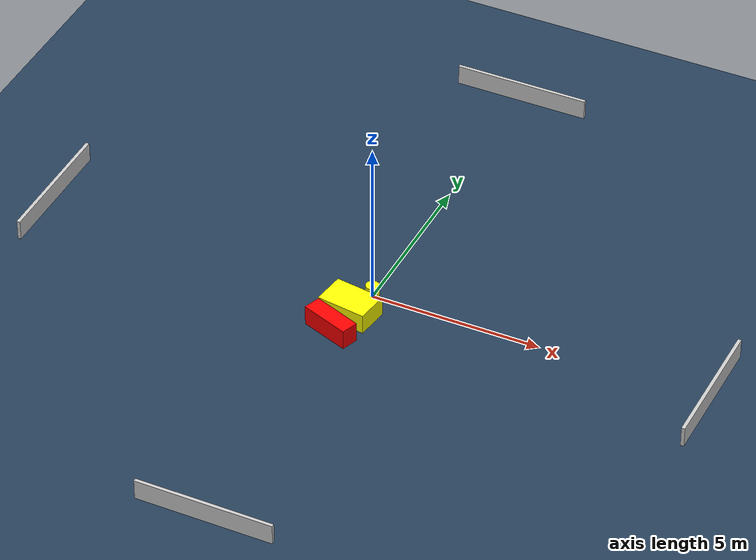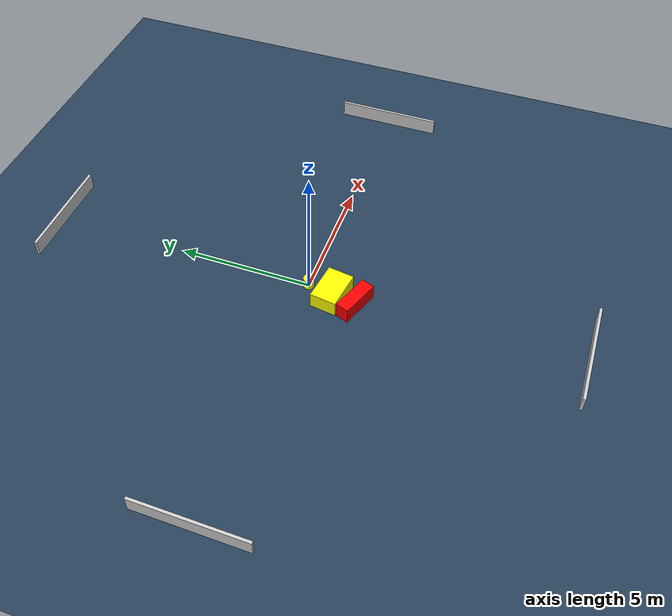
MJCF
<?xml version="1.0" ?>
<mujoco model="generated_environment">
  <option timestep="0.01" integrator="RK4" cone="elliptic"/>
  <default>
    <geom density="1"/>
  </default>
  <asset>
    <texture builtin="gradient" height="3072" name="skybox" rgb1="0.3 0.5 0.7" rgb2="0 0 0" type="skybox" width="512"/>
    <texture builtin="checker" height="300" name="groundplane" rgb1="0.2 0.3 0.4" rgb2="0.1 0.2 0.3" type="2d" width="300"/>
    <material name="groundplane" reflectance="0.2" texrepeat="5 5" texture="groundplane"/>
  </asset>
  <worldbody>
    <light dir="0 0 -1" directional="true" pos="0 0 1.5"/>
    <geom condim="3" friction="0.5 0.005 0.001" material="groundplane" name="floor" pos="0 0 0" size="0 0 0.05" type="plane"/>
    <body name="walls">
      <geom name="wall_1" condim="4" pos="-10.0 0.0 0.3" rgba="0.800000011920929 0.800000011920929 0.800000011920929 1.0" size="0.05 2.0 0.3" type="box"/>
      <geom name="wall_2" condim="4" pos="10.0 0.0 0.3" rgba="0.800000011920929 0.800000011920929 0.800000011920929 1.0" size="0.05 2.0 0.3" type="box"/>
      <geom name="wall_3" condim="4" pos="0.0 -10.0 0.3" rgba="0.800000011920929 0.800000011920929 0.800000011920929 1.0" size="2.0 0.05 0.3" type="box"/>
      <geom name="wall_4" condim="4" pos="0.0 10.0 0.3" rgba="0.800000011920929 0.800000011920929 0.800000011920929 1.0" size="2.0 0.05 0.3" type="box"/>
    </body>
    <body name="robot">
      <joint name="joint_x" type="slide" pos="0 0 0" axis="1 0 0"/>
      <joint name="joint_y" type="slide" pos="0 0 0" axis="0 1 0"/>
      <geom name="robot" type="cylinder" pos="0.0 0.0 0.2" size="0.2 0.2 0.0" mass="5.0" friction="1.0 0.005 0.0001" condim="4" rgba="1.0 1.0 0.0 1.0"/>
    </body>
    <body name="obstacle_1_movable">
      <geom name="obstacle_1_movable" condim="4" pos="-0.21662870774674173 -0.951809521692402 0.3" euler="0 0 171.96396532235852" friction="0.0 0.005 0.001" rgba="1.0 1.0 0.0 1.0" size="0.7298277405922147 0.48581588603211445 0.3" type="box" mass="0.1"/>
      <joint type="free"/>
    </body>
    <body name="obstacle_2_static">
      <geom name="obstacle_2_static" condim="4" pos="-0.3672337003322542 -1.8562575890995714 0.3" euler="0 0 159.8771071865042" friction="0.0 0.005 0.001" rgba="1.0 0.0 0.0 1.0" size="0.744556488540947 0.2524000017571187 0.3" type="box"/>
    </body>
  </worldbody>
  <actuator>
    <motor name="actuator_x" joint="joint_x" gear="1" ctrlrange="-1 1"/>
    <motor name="actuator_y" joint="joint_y" gear="1" ctrlrange="-1 1"/>
  </actuator>
</mujoco>
